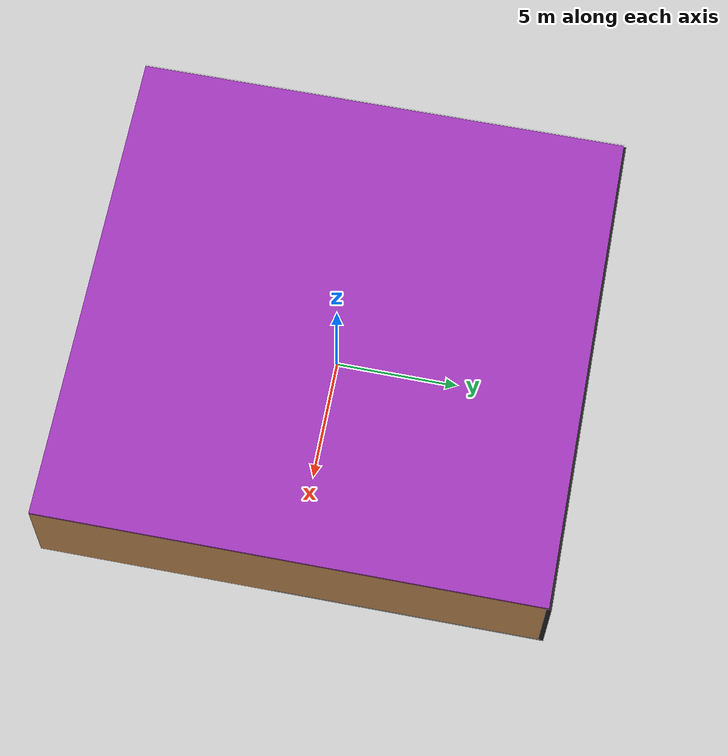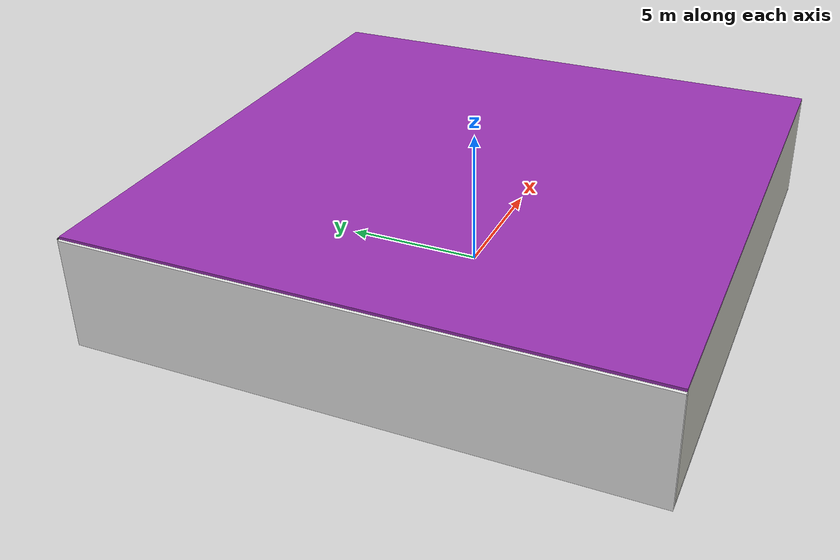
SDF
<sdf version="1.4">
 <world name="default">
  <physics type="ode">
   <max_step_size>0.001</max_step_size>
   <real_time_factor>1</real_time_factor>
   <real_time_update_rate>1000</real_time_update_rate>
   <gravity>0 0 -9.8</gravity>
  </physics>
  <scene><ambient>0.4 0.4 0.4 1</ambient><background>0.7 0.7 0.7 1</background><shadows>1</shadows></scene>
  <model name="Surrounding">
   <static>1</static>
   <link name="Ceiling">
    <collision name="Ceiling_Collision"><geometry><box><size>20 20 0.1</size></box></geometry></collision>
    <visual name="Ceiling_Visual">
     <geometry><box><size>20 20 0.1</size></box></geometry>
     <material>
      <script><uri>file://media/materials/scripts/gazebo.material</uri><name>Gazebo/PurpleGlow</name></script>
     </material>
    </visual>
    <pose>0 0 4.05 0 0 0</pose>
   </link>
   <link name="Wall_South">
    <collision name="Wall_South_Collision">
     <geometry><box><size>20 0 4</size></box></geometry>
     <pose>0 0 2 0 -0 0</pose>
    </collision>
    <visual name="Wall_South_Visual">
     <pose>0 0 2 0 -0 0</pose>
     <geometry><box><size>20 0 4</size></box></geometry>
     <material>
      <script><uri>file://media/materials/scripts/gazebo.material</uri><name>Gazebo/PaintedWall</name></script>
     </material>
    </visual>
    <velocity_decay><linear>0</linear><angular>0</angular></velocity_decay>
    <pose>0 -10 0 0 -0 0</pose>
   </link>
   <link name="Wall_East">
    <collision name="Wall_21_Collision">
     <geometry><box><size>20 0 4</size></box></geometry>
     <pose>0 0 2 0 -0 0</pose>
    </collision>
    <visual name="Wall_21_Visual">
     <pose>0 0 2 0 -0 0</pose>
     <geometry><box><size>20 0 4</size></box></geometry>
     <material>
      <script><uri>file://media/materials/scripts/gazebo.material</uri><name>Gazebo/Wood</name></script>
     </material>
    </visual>
    <velocity_decay><linear>0</linear><angular>0</angular></velocity_decay>
    <pose>10 0 0 0 -0 1.5708</pose>
   </link>
   <link name="Wall_North">
    <collision name="Wall_22_Collision">
     <geometry><box><size>20 0.2 4</size></box></geometry>
     <pose>0 0 2 0 -0 0</pose>
    </collision>
    <visual name="Wall_22_Visual">
     <pose>0 0 2 0 -0 0</pose>
     <geometry><box><size>20 0.2 4</size></box></geometry>
     <material>
      <script><uri>file://media/materials/scripts/gazebo.material</uri><name>Gazebo/Black</name></script>
     </material>
    </visual>
    <velocity_decay><linear>0</linear><angular>0</angular></velocity_decay>
    <pose>0 10 0 0 -0 0</pose>
   </link>
   <link name="Wall_West">
    <collision name="Wall_23_Collision">
     <geometry><box><size>20 0.2 4</size></box></geometry>
     <pose>0 0 2 0 -0 0</pose>
    </collision>
    <visual name="Wall_23_Visual">
     <pose>0 0 2 0 -0 0</pose>
     <geometry><box><size>20 0.2 4</size></box></geometry>
     <material>
      <script><uri>file://media/materials/scripts/gazebo.material</uri><name>Gazebo/White</name></script>
     </material>
    </visual>
    <velocity_decay><linear>0</linear><angular>0</angular></velocity_decay>
    <pose>-10 0 0 0 0 -1.5708</pose>
   </link>
   <link name="Ground_link">
    <collision name="collision">
     <pose>0 0 .05 0 -0 0</pose>
     <geometry><box><size>20 20 0.1</size></box></geometry>
    </collision>
    <visual name="visual">
     <pose>0 0 .05 0 -0 0</pose>
     <geometry><box><size>20 20 0.1</size></box></geometry>
     <material>
      <script><uri>file://media/materials/scripts/gazebo.material</uri><name>Gazebo/LightOff</name></script>
     </material>
    </visual>
   </link>
   <static>1</static>
  </model>
  <spherical_coordinates>
   <surface_model>EARTH_WGS84</surface_model>
   <latitude_deg>0</latitude_deg>
   <longitude_deg>0</longitude_deg>
   <elevation>0</elevation>
   <heading_deg>0</heading_deg>
  </spherical_coordinates>
  <light name="lightball_0" type="diffuse">
   <diffuse>0.8 0.8 0.8 1</diffuse>
   <specular>0.2 0.2 0.2 1</specular>
   <attenuation>
    <range>100</range>
    <constant>0.7</constant>
    <linear>0.01</linear>
    <quadratic>0.001</quadratic>
   </attenuation>
   <direction>-0.5 0.1 -0.9</direction>
   <pose>7.49975214293 -0.240749146959 3.03983230934 0 0 0</pose>
  </light>
  <light name="lightball_1" type="diffuse">
   <diffuse>0.8 0.8 0.8 1</diffuse>
   <specular>0.2 0.2 0.2 1</specular>
   <attenuation>
    <range>100</range>
    <constant>0.7</constant>
    <linear>0.01</linear>
    <quadratic>0.001</quadratic>
   </attenuation>
   <direction>-0.5 0.1 -0.9</direction>
   <pose>-6.18513596487 -6.88938651257 0.598086719782 0 0 0</pose>
  </light>
  <light name="lightball_2" type="diffuse">
   <diffuse>0.8 0.8 0.8 1</diffuse>
   <specular>0.2 0.2 0.2 1</specular>
   <attenuation>
    <range>100</range>
    <constant>0.7</constant>
    <linear>0.01</linear>
    <quadratic>0.001</quadratic>
   </attenuation>
   <direction>-0.5 0.1 -0.9</direction>
   <pose>-1.87842295405 -1.412648123 0.50046102717 0 0 0</pose>
  </light>
  <include><uri>model://cabinet</uri><pose>-7.95366606761 3.74223697594 0 0 0 2.60044905764</pose></include>
  <include>
   <uri>model://construction_cone</uri>
   <pose>-4.6391301282 8.06699692714 0 0 0 0.282530479096</pose>
  </include>
  <include>
   <uri>model://robocup_3Dsim_goal</uri>
   <pose>-1.43248528646 4.0535526533 0 0 0 0.691941625591</pose>
  </include>
  <include><uri>model://cabinet</uri><pose>-1.33903103128 7.97733234986 0 0 0 1.61370887765</pose></include>
  <include><uri>model://table</uri><pose>1.31817222075 -4.40996116657 0 0 0 2.91791979833</pose></include>
  <include><uri>model://table</uri><pose>1.37907797349 2.19375797801 0 0 0 3.13603114864</pose></include>
  <include>
   <uri>model://construction_cone</uri>
   <pose>5.25746762492 7.30148676061 0 0 0 1.50947887993</pose>
  </include>
 </world>
</sdf>

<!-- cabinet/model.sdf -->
<sdf version="1.5">
  <model name="cabinet">
    <static>true</static>
    <link name="cabinet_bottom_plate">
      <inertial>
        <pose>0 0 -1 0 0 0</pose>
        <inertia>
          <ixx>2.050000</ixx>
          <ixy>0</ixy>
          <ixz>0</ixz>
          <iyy>2.050000</iyy>
          <iyz>0</iyz>
          <izz>2.050000</izz>
        </inertia>
        <mass>25.000000</mass>
      </inertial>
      <collision name="cabinet_bottom_plate_geom">
        <pose>0 0 0.010000 0 0 0</pose>
        <geometry>
          <box>
            <size>0.450000 0.450000 0.020000</size>
          </box>
        </geometry>
      </collision>
      <visual name="cabinet_bottom_plate_geom_visual">
        <pose>0 0 0.010000 0 0 0</pose>
        <geometry>
          <box>
            <size>0.450000 0.450000 0.020000</size>
          </box>
        </geometry>
        <material>
          <script>
            <uri>model://media/materials/scripts/gazebo.material</uri>
            <name>Gazebo/Wood</name>
          </script>
        </material>
      </visual>
      <collision name="cabinet_bottom_plate_geom_cabinet_back_plate">
        <pose>0.235000 0 0.510000 0 0 0</pose>
        <geometry>
          <box>
            <size>0.020000 0.450000 1.020000</size>
          </box>
        </geometry>
      </collision>
      <visual name="cabinet_bottom_plate_geom_cabinet_back_plate_visual">
        <pose>0.235000 0 0.510000 0 0 0</pose>
        <geometry>
          <box>
            <size>0.020000 0.450000 1.020000</size>
          </box>
        </geometry>
        <material>
          <script>
            <uri>model://media/materials/scripts/gazebo.material</uri>
            <name>Gazebo/Wood</name>
          </script>
        </material>
      </visual>
      <collision name="cabinet_bottom_plate_geom_cabinet_left_plate">
        <pose>0 0.235000 0.510000 0 0 0</pose>
        <geometry>
          <box>
            <size>0.450000 0.020000 1.020000</size>
          </box>
        </geometry>
      </collision>
      <visual name="cabinet_bottom_plate_geom_cabinet_left_plate_visual">
        <pose>0 0.235000 0.510000 0 0 0</pose>
        <geometry>
          <box>
            <size>0.450000 0.020000 1.020000</size>
          </box>
        </geometry>
        <material>
          <script>
            <uri>model://media/materials/scripts/gazebo.material</uri>
            <name>Gazebo/Wood</name>
          </script>
        </material>
      </visual>
      <collision name="cabinet_bottom_plate_geom_cabinet_middle_plate">
        <pose>0 0 0.510000 0 0 0</pose>
        <geometry>
          <box>
            <size>0.450000 0.450000 0.020000</size>
          </box>
        </geometry>
      </collision>
      <visual name="cabinet_bottom_plate_geom_cabinet_middle_plate_visual">
        <pose>0 0 0.510000 0 0 0</pose>
        <geometry>
          <box>
            <size>0.450000 0.450000 0.020000</size>
          </box>
        </geometry>
        <material>
          <script>
            <uri>model://media/materials/scripts/gazebo.material</uri>
            <name>Gazebo/Wood</name>
          </script>
        </material>
      </visual>
      <collision name="cabinet_bottom_plate_geom_cabinet_right_plate">
        <pose>0 -0.235000 0.510000 0 0 0</pose>
        <geometry>
          <box>
            <size>0.450000 0.020000 1.020000</size>
          </box>
        </geometry>
      </collision>
      <visual name="cabinet_bottom_plate_geom_cabinet_right_plate_visual">
        <pose>0 -0.235000 0.510000 0 0 0</pose>
        <geometry>
          <box>
            <size>0.450000 0.020000 1.020000</size>
          </box>
        </geometry>
        <material>
          <script>
            <uri>model://media/materials/scripts/gazebo.material</uri>
            <name>Gazebo/Wood</name>
          </script>
        </material>
      </visual>
      <collision name="cabinet_bottom_plate_geom_cabinet_top_plate">
        <pose>0 0 1.010000 0 0 0</pose>
        <geometry>
          <box>
            <size>0.450000 0.450000 0.020000</size>
          </box>
        </geometry>
      </collision>
      <visual name="cabinet_bottom_plate_geom_cabinet_top_plate_visual">
        <pose>0 0 1.010000 0 0 0</pose>
        <geometry>
          <box>
            <size>0.450000 0.450000 0.020000</size>
          </box>
        </geometry>
        <material>
          <script>
            <uri>model://media/materials/scripts/gazebo.material</uri>
            <name>Gazebo/Wood</name>
          </script>
        </material>
      </visual>
    </link>
  </model>
</sdf>

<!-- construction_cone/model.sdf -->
<sdf version="1.5">
  <model name="Construction Cone">
    <link name="link">
      <collision name="collision">
        <geometry>
          <mesh>
            <scale>10 10 10</scale>
            <uri>file://isr-testbed/construction_cone/meshes/construction_cone.dae</uri>
          </mesh>
        </geometry>
      </collision>
      <visual name="visual">
        <geometry>
          <mesh>
            <scale>10 10 10</scale>
            <uri>file://isr-testbed/construction_cone/meshes/construction_cone.dae</uri>
          </mesh>
        </geometry>
      </visual>
    </link>
  </model>
</sdf>

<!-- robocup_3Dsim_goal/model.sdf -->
<sdf version="1.5">
  <model name="robocup_3d_goal">
    <static>true</static>
    <link name="left_post">
      <pose>0 1.05 0.45 0 0 0</pose>
      <collision name="collision">
        <geometry>
          <cylinder>
            <radius>0.05</radius>
            <length>0.9</length>
          </cylinder>
        </geometry>
      </collision>
      <visual name="visual">
        <geometry>
          <cylinder>
            <radius>0.05</radius>
            <length>0.9</length>
          </cylinder>
        </geometry>
        <material>
          <script>
            <uri>file://media/materials/scripts/gazebo.material</uri>
            <name>Gazebo/ZincYellow</name>
          </script>
        </material>
      </visual>
    </link>
    <link name="left_support_horiz_lower">
      <pose>0.30 1.05 0.01 0 0 0</pose>
      <collision name="collision">
        <geometry>
          <box>
            <size>0.50 0.02 0.02</size>
          </box>
        </geometry>
      </collision>
      <visual name="visual">
        <geometry>
          <box>
            <size>0.50 0.02 0.02</size>
          </box>
        </geometry>
        <material>
          <script>
            <uri>file://media/materials/scripts/gazebo.material</uri>
            <name>Gazebo/White</name>
          </script>
        </material>
      </visual>
    </link>
    <link name="left_support_horiz_upper">
      <pose>0.30 1.05 0.79 0 0 0</pose>
      <collision name="collision">
        <geometry>
          <box>
            <size>0.50 0.02 0.02</size>
          </box>
        </geometry>
      </collision>
      <visual name="visual">
        <geometry>
          <box>
            <size>0.50 0.02 0.02</size>
          </box>
        </geometry>
        <material>
          <script>
            <uri>file://media/materials/scripts/gazebo.material</uri>
            <name>Gazebo/White</name>
          </script>
        </material>
      </visual>
    </link>
    <link name="left_support_vertical">
      <pose>0.56 1.05 0.4 0 1.5708 0</pose>
      <collision name="collision">
        <geometry>
          <box>
            <size>0.80 0.02 0.02</size>
          </box>
        </geometry>
      </collision>
      <visual name="visual">
        <geometry>
          <box>
            <size>0.80 0.02 0.02</size>
          </box>
        </geometry>
        <material>
          <script>
            <uri>file://media/materials/scripts/gazebo.material</uri>
            <name>Gazebo/White</name>
          </script>
        </material>
      </visual>
    </link>
    <link name="right_support_horiz_lower">
      <pose>0.30 -1.05 0.01 0 0 0</pose>
      <collision name="collision">
        <geometry>
          <box>
            <size>0.50 0.02 0.02</size>
          </box>
        </geometry>
      </collision>
      <visual name="visual">
        <geometry>
          <box>
            <size>0.50 0.02 0.02</size>
          </box>
        </geometry>
        <material>
          <script>
            <uri>file://media/materials/scripts/gazebo.material</uri>
            <name>Gazebo/White</name>
          </script>
        </material>
      </visual>
    </link>
    <link name="right_support_horiz_upper">
      <pose>0.30 -1.05 0.79 0 0 0</pose>
      <collision name="collision">
        <geometry>
          <box>
            <size>0.50 0.02 0.02</size>
          </box>
        </geometry>
      </collision>
      <visual name="visual">
        <geometry>
          <box>
            <size>0.50 0.02 0.02</size>
          </box>
        </geometry>
        <material>
          <script>
            <uri>file://media/materials/scripts/gazebo.material</uri>
            <name>Gazebo/White</name>
          </script>
        </material>
      </visual>
    </link>
    <link name="right_support_vertical">
      <pose>0.56 -1.05 0.4 0 1.5708 0</pose>
      <collision name="collision">
        <geometry>
          <box>
            <size>0.80 0.02 0.02</size>
          </box>
        </geometry>
      </collision>
      <visual name="visual">
        <geometry>
          <box>
            <size>0.80 0.02 0.02</size>
          </box>
        </geometry>
        <material>
          <script>
            <uri>file://media/materials/scripts/gazebo.material</uri>
            <name>Gazebo/White</name>
          </script>
        </material>
      </visual>
    </link>
    <link name="center_support_horiz_lower">
      <pose>0.56 0 0.01 0 1.5708 0</pose>
      <collision name="collision">
        <geometry>
          <box>
            <size>0.02 2.08 0.02</size>
          </box>
        </geometry>
      </collision>
      <visual name="visual">
        <geometry>
          <box>
            <size>0.02 2.08 0.02</size>
          </box>
        </geometry>
        <material>
          <script>
            <uri>file://media/materials/scripts/gazebo.material</uri>
            <name>Gazebo/White</name>
          </script>
        </material>
      </visual>
    </link>
    <link name="center_support_horiz_upper">
      <pose>0.56 0 0.79 0 1.5708 0</pose>
      <collision name="collision">
        <geometry>
          <box>
            <size>0.02 2.08 0.02</size>
          </box>
        </geometry>
      </collision>
      <visual name="visual">
        <geometry>
          <box>
            <size>0.02 2.08 0.02</size>
          </box>
        </geometry>
        <material>
          <script>
            <uri>file://media/materials/scripts/gazebo.material</uri>
            <name>Gazebo/White</name>
          </script>
        </material>
      </visual>
    </link>
    <link name="right_post">
      <pose>0 -1.05 0.45 0 0 0</pose>
      <collision name="collision">
        <geometry>
          <cylinder>
            <radius>0.05</radius>
            <length>0.9</length>
          </cylinder>
        </geometry>
      </collision>
      <visual name="visual">
        <geometry>
          <cylinder>
            <radius>0.05</radius>
            <length>0.9</length>
          </cylinder>
        </geometry>
        <material>
          <script>
            <uri>file://media/materials/scripts/gazebo.material</uri>
            <name>Gazebo/ZincYellow</name>
          </script>
        </material>
      </visual>
    </link>
    <link name="crossbar">
      <pose>0 0 0.85 1.57 1.57 0</pose>
      <collision name="collision">
        <geometry>
          <cylinder>
            <radius>0.05</radius>
            <length>2.0</length>
          </cylinder>
        </geometry>
      </collision>
      <visual name="visual">
        <geometry>
          <cylinder>
            <radius>0.05</radius>
            <length>2.0</length>
          </cylinder>
        </geometry>
        <material>
          <script>
            <uri>file://media/materials/scripts/gazebo.material</uri>
            <name>Gazebo/ZincYellow</name>
          </script>
        </material>
      </visual>
    </link>
    <link name="center_net">
      <pose>0.56 0 0.40 0 0 0</pose>
      <collision name="collision">
        <geometry>
          <box>
            <size>0.01 2.1 0.80</size>
          </box>
        </geometry>
      </collision>
      <visual name="visual">
        <geometry>
          <box>
            <size>0.01 2.1 0.80</size>
          </box>
        </geometry>
        <material>
          <script>
            <uri>model://../model_source/models/robocup09_spl_field/materials/scripts/</uri>
            <uri>model://../model_source/models/robocup09_spl_field/materials/textures/</uri>
            <name>RoboCup/Net</name>
          </script>
        </material>
      </visual>
    </link>
    <link name="left_net">
      <pose>0.30 1.05 0.40 0 0 0</pose>
      <collision name="collision">
        <geometry>
          <box>
            <size>0.50 0.01 0.76</size>
          </box>
        </geometry>
      </collision>
      <visual name="visual">
        <geometry>
          <box>
            <size>0.50 0.01 0.76</size>
          </box>
        </geometry>
        <material>
          <script>
            <uri>model://../model_source/models/robocup09_spl_field/materials/scripts/</uri>
            <uri>model://../model_source/models/robocup09_spl_field/materials/textures/</uri>
            <name>RoboCup/Net</name>
          </script>
        </material>
      </visual>
    </link>
    <link name="right_net">
      <pose>0.30 -1.05 0.40 0 0 0</pose>
      <collision name="collision">
        <geometry>
          <box>
            <size>0.50 0.01 0.76</size>
          </box>
        </geometry>
      </collision>
      <visual name="visual">
        <geometry>
          <box>
            <size>0.50 0.01 0.76</size>
          </box>
        </geometry>
        <material>
          <script>
            <uri>model://../model_source/models/robocup09_spl_field/materials/scripts/</uri>
            <uri>model://../model_source/models/robocup09_spl_field/materials/textures/</uri>
            <name>RoboCup/Net</name>
          </script>
        </material>
      </visual>
    </link>
  </model>
</sdf>

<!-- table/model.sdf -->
<sdf version="1.5">
  <model name="table">
    <static>true</static>
    <link name="link">
      <collision name="surface">
        <pose>0 0 1.0 0 0 0</pose>
        <geometry>
          <box>
            <size>1.5 0.8 0.03</size>
          </box>
        </geometry>
        <surface>
          <friction>
            <ode>
              <mu>0.6</mu>
              <mu2>0.6</mu2>
            </ode>
          </friction>
        </surface>
      </collision>
      <visual name="visual1">
        <pose>0 0 1.0 0 0 0</pose>
        <geometry>
          <box>
            <size>1.5 0.8 0.03</size>
          </box>
        </geometry>
        <material>
          <script>
            <uri>model://media/materials/scripts/gazebo.material</uri>
            <name>Gazebo/Wood</name>
          </script>
        </material>
      </visual>
      <collision name="front_left_leg">
        <pose>0.68 0.38 0.5 0 0 0</pose>
        <geometry>
          <cylinder>
            <radius>0.02</radius>
            <length>1.0</length>
          </cylinder>
        </geometry>
      </collision>
      <visual name="front_left_leg">
        <pose>0.68 0.38 0.5 0 0 0</pose>
        <geometry>
          <cylinder>
            <radius>0.02</radius>
            <length>1.0</length>
          </cylinder>
        </geometry>
        <material>
          <script>
            <uri>model://media/materials/scripts/gazebo.material</uri>
            <name>Gazebo/Grey</name>
          </script>
        </material>
      </visual>
      <collision name="front_right_leg">
        <pose>0.68 -0.38 0.5 0 0 0</pose>
        <geometry>
          <cylinder>
            <radius>0.02</radius>
            <length>1.0</length>
          </cylinder>
        </geometry>
      </collision>
      <visual name="front_right_leg">
        <pose>0.68 -0.38 0.5 0 0 0</pose>
        <geometry>
          <cylinder>
            <radius>0.02</radius>
            <length>1.0</length>
          </cylinder>
        </geometry>
        <material>
          <script>
            <uri>model://media/materials/scripts/gazebo.material</uri>
            <name>Gazebo/Grey</name>
          </script>
        </material>
      </visual>
      <collision name="back_right_leg">
        <pose>-0.68 -0.38 0.5 0 0 0</pose>
        <geometry>
          <cylinder>
            <radius>0.02</radius>
            <length>1.0</length>
          </cylinder>
        </geometry>
      </collision>
      <visual name="back_right_leg">
        <pose>-0.68 -0.38 0.5 0 0 0</pose>
        <geometry>
          <cylinder>
            <radius>0.02</radius>
            <length>1.0</length>
          </cylinder>
        </geometry>
        <material>
          <script>
            <uri>model://media/materials/scripts/gazebo.material</uri>
            <name>Gazebo/Grey</name>
          </script>
        </material>
      </visual>
      <collision name="back_left_leg">
        <pose>-0.68 0.38 0.5 0 0 0</pose>
        <geometry>
          <cylinder>
            <radius>0.02</radius>
            <length>1.0</length>
          </cylinder>
        </geometry>
      </collision>
      <visual name="back_left_leg">
        <pose>-0.68 0.38 0.5 0 0 0</pose>
        <geometry>
          <cylinder>
            <radius>0.02</radius>
            <length>1.0</length>
          </cylinder>
        </geometry>
        <material>
          <script>
            <uri>model://media/materials/scripts/gazebo.material</uri>
            <name>Gazebo/Grey</name>
          </script>
        </material>
      </visual>
    </link>
  </model>
</sdf>
